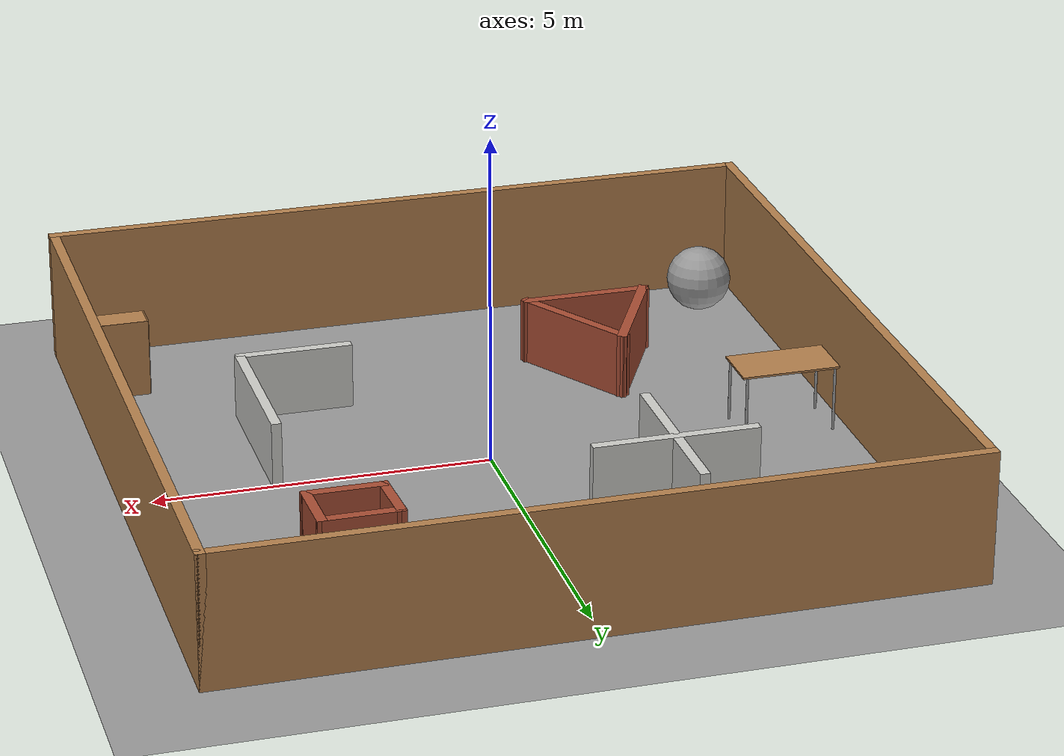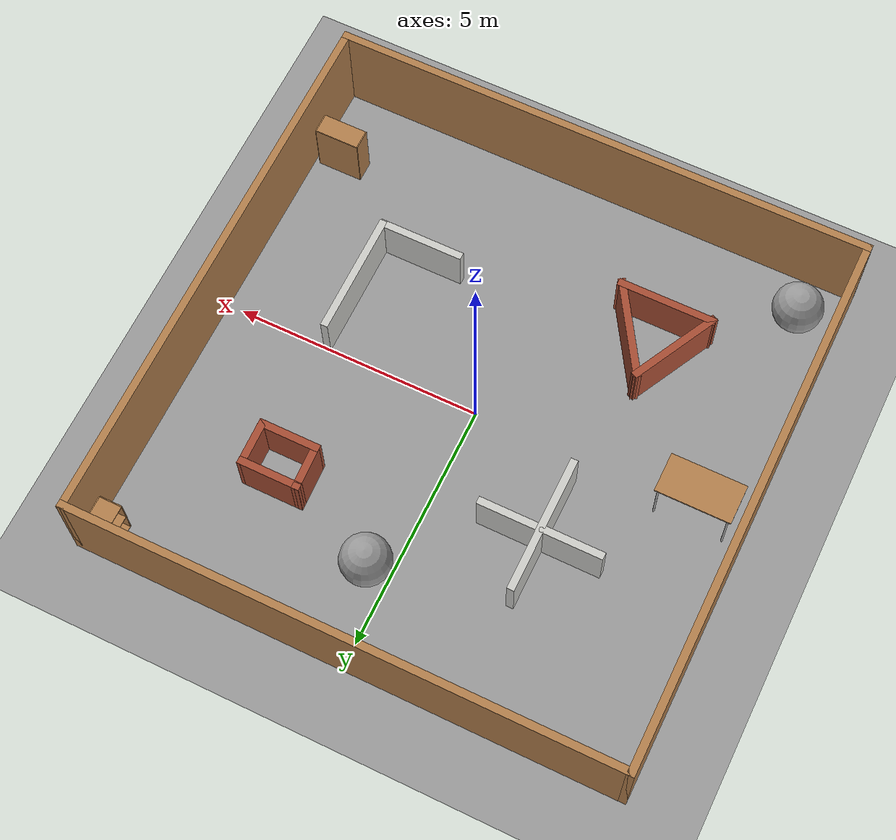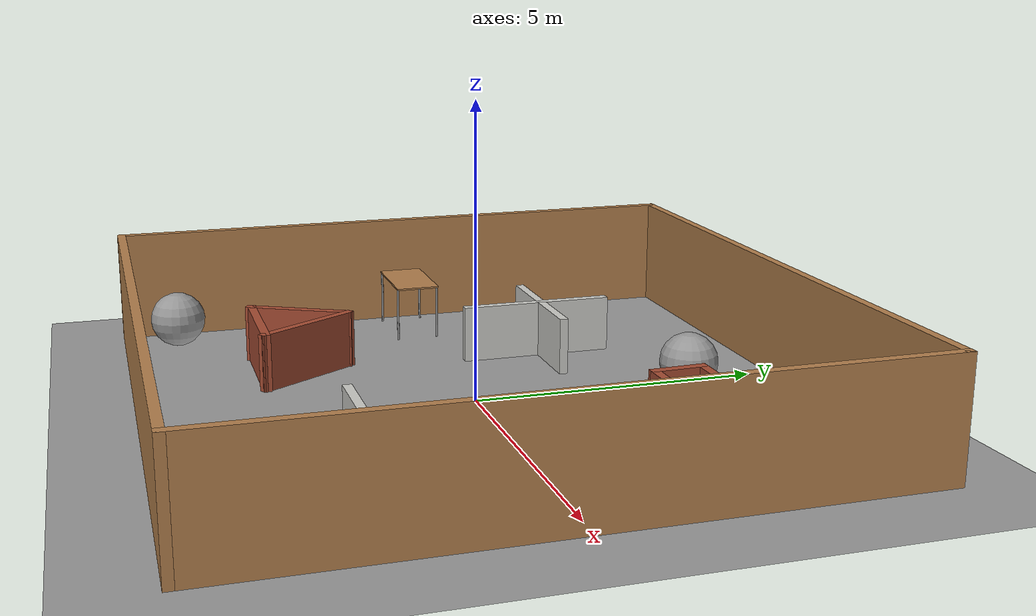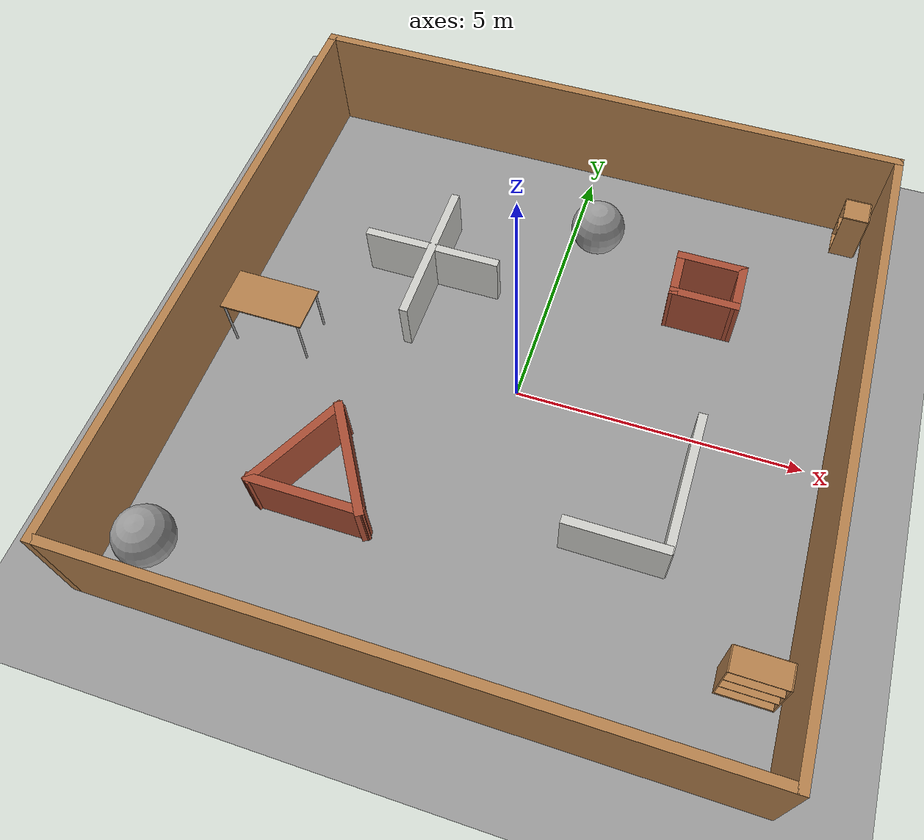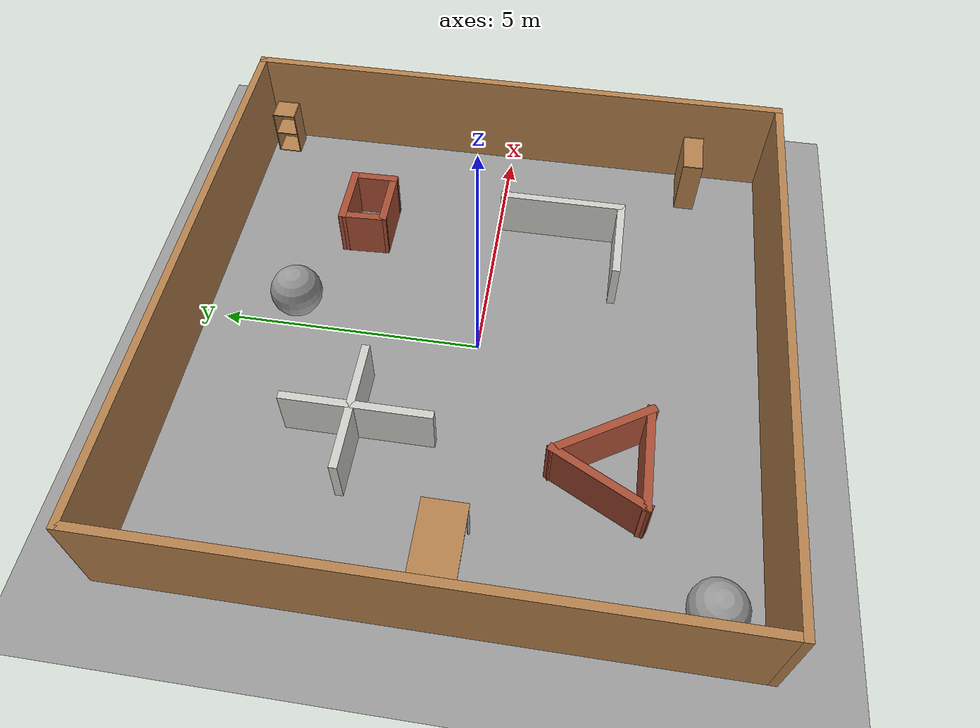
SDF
<sdf version="1.6">
 <world name="default">
  <light name="sun" type="directional">
   <pose>0 0 10 0 -0 0</pose>
   <diffuse>0.8 0.8 0.8 1</diffuse>
   <specular>0.2 0.2 0.2 1</specular>
   <attenuation>
    <range>1000</range>
    <constant>0.9</constant>
    <linear>0.01</linear>
    <quadratic>0.001</quadratic>
   </attenuation>
   <direction>0.5 0.1 -0.9</direction>
  </light>
  <scene><ambient>0.4 0.4 0.4 1</ambient><background>0.7 0.7 0.7 1</background><shadows>1</shadows></scene>
  <physics name="default_physics" default="0" type="ode">
   <max_step_size>0.01</max_step_size>
   <real_time_factor>1</real_time_factor>
   <real_time_update_rate>100</real_time_update_rate>
  </physics>
  <model name="ground_plane_0">
   <static>1</static>
   <link name="link">
    <collision name="collision">
     <geometry><plane><normal>0 0 1</normal><size>100 100</size></plane></geometry>
     <surface><friction><ode><mu>100</mu><mu2>50</mu2></ode></friction></surface>
    </collision>
    <visual name="visual">
     <cast_shadows>0</cast_shadows>
     <geometry><plane><normal>0 0 1</normal><size>100 100</size></plane></geometry>
     <material>
      <script><uri>file://media/materials/scripts/gazebo.material</uri><name>Gazebo/Grey</name></script>
     </material>
    </visual>
    <velocity_decay><linear>0</linear><angular>0</angular></velocity_decay>
   </link>
   <pose>0.497681 0 0 0 -0 0</pose>
  </model>
  <gravity>0 0 -9.8</gravity>
  <magnetic_field>6e-06 2.3e-05 -4.2e-05</magnetic_field>
  <atmosphere type="adiabatic"/>
  <spherical_coordinates>
   <surface_model>EARTH_WGS84</surface_model>
   <latitude_deg>0</latitude_deg>
   <longitude_deg>0</longitude_deg>
   <elevation>0</elevation>
   <heading_deg>0</heading_deg>
  </spherical_coordinates>
  <model name="Untitled">
   <pose>-0.03799 0.0344 0 0 -0 0</pose>
   <link name="Wall_11">
    <collision name="Wall_11_Collision">
     <geometry><box><size>2.5 0.15 1</size></box></geometry>
     <pose>0 0 0.5 0 -0 0</pose>
    </collision>
    <visual name="Wall_11_Visual">
     <pose>0 0 0.5 0 -0 0</pose>
     <geometry><box><size>2.5 0.15 1</size></box></geometry>
     <material>
      <script><uri>file://media/materials/scripts/gazebo.material</uri><name>Gazebo/CeilingTiled</name></script>
      <ambient>1 1 1 1</ambient>
     </material>
     <meta><layer>0</layer></meta>
    </visual>
    <pose>-2.152 1.857 0 0 -0 0</pose>
   </link>
   <link name="Wall_13">
    <collision name="Wall_13_Collision">
     <geometry><box><size>2.75 0.15 1</size></box></geometry>
     <pose>0 0 0.5 0 -0 0</pose>
    </collision>
    <visual name="Wall_13_Visual">
     <pose>0 0 0.5 0 -0 0</pose>
     <geometry><box><size>2.75 0.15 1</size></box></geometry>
     <material>
      <script><uri>file://media/materials/scripts/gazebo.material</uri><name>Gazebo/CeilingTiled</name></script>
      <ambient>1 1 1 1</ambient>
     </material>
     <meta><layer>0</layer></meta>
    </visual>
    <pose>-2.155 1.764 0 0 0 -1.5708</pose>
   </link>
   <link name="Wall_15">
    <collision name="Wall_15_Collision">
     <geometry><box><size>1.2678 0.15 1</size></box></geometry>
     <pose>0 0 0.5 0 -0 0</pose>
    </collision>
    <visual name="Wall_15_Visual">
     <pose>0 0 0.5 0 -0 0</pose>
     <geometry><box><size>1.2678 0.15 1</size></box></geometry>
     <material>
      <script><uri>file://media/materials/scripts/gazebo.material</uri><name>Gazebo/Bricks</name></script>
      <ambient>1 1 1 1</ambient>
     </material>
     <meta><layer>0</layer></meta>
    </visual>
    <pose>2.724 3.029 0 0 -0 0</pose>
   </link>
   <link name="Wall_16">
    <collision name="Wall_16_Collision">
     <geometry><box><size>0.965005 0.15 1</size></box></geometry>
     <pose>0 0 0.5 0 -0 0</pose>
    </collision>
    <visual name="Wall_16_Visual">
     <pose>0 0 0.5 0 -0 0</pose>
     <geometry><box><size>0.965005 0.15 1</size></box></geometry>
     <material>
      <script><uri>file://media/materials/scripts/gazebo.material</uri><name>Gazebo/Bricks</name></script>
      <ambient>1 1 1 1</ambient>
     </material>
     <meta><layer>0</layer></meta>
    </visual>
    <pose>3.2915 2.6215 0 0 0 -1.54994</pose>
   </link>
   <link name="Wall_17">
    <collision name="Wall_17_Collision">
     <geometry><box><size>1.25 0.15 1</size></box></geometry>
     <pose>0 0 0.5 0 -0 0</pose>
    </collision>
    <visual name="Wall_17_Visual">
     <pose>0 0 0.5 0 -0 0</pose>
     <geometry><box><size>1.25 0.15 1</size></box></geometry>
     <material>
      <script><uri>file://media/materials/scripts/gazebo.material</uri><name>Gazebo/Bricks</name></script>
      <ambient>1 1 1 1</ambient>
     </material>
     <meta><layer>0</layer></meta>
    </visual>
    <pose>2.75 2.214 0 0 -0 3.14159</pose>
   </link>
   <link name="Wall_18">
    <collision name="Wall_18_Collision">
     <geometry><box><size>0.965005 0.15 1</size></box></geometry>
     <pose>0 0 0.5 0 -0 0</pose>
    </collision>
    <visual name="Wall_18_Visual">
     <pose>0 0 0.5 0 -0 0</pose>
     <geometry><box><size>0.965005 0.15 1</size></box></geometry>
     <material>
      <script><uri>file://media/materials/scripts/gazebo.material</uri><name>Gazebo/Bricks</name></script>
      <ambient>1 1 1 1</ambient>
     </material>
     <meta><layer>0</layer></meta>
    </visual>
    <pose>2.1825 2.6215 0 0 -0 1.61372</pose>
   </link>
   <link name="Wall_24">
    <collision name="Wall_24_Collision">
     <geometry><box><size>1.97704 0.15 1</size></box></geometry>
     <pose>0 0 0.5 0 -0 0</pose>
    </collision>
    <visual name="Wall_24_Visual">
     <pose>0 0 0.5 0 -0 0</pose>
     <geometry><box><size>1.97704 0.15 1</size></box></geometry>
     <material>
      <script><uri>file://media/materials/scripts/gazebo.material</uri><name>Gazebo/Bricks</name></script>
      <ambient>1 1 1 1</ambient>
     </material>
     <meta><layer>0</layer></meta>
    </visual>
    <pose>-2.89576 -2.49088 0 0 -0 1.09459</pose>
   </link>
   <link name="Wall_25">
    <collision name="Wall_25_Collision">
     <geometry><box><size>2.06356 0.15 1</size></box></geometry>
     <pose>0 0 0.5 0 -0 0</pose>
    </collision>
    <visual name="Wall_25_Visual">
     <pose>0 0 0.5 0 -0 0</pose>
     <geometry><box><size>2.06356 0.15 1</size></box></geometry>
     <material>
      <script><uri>file://media/materials/scripts/gazebo.material</uri><name>Gazebo/Bricks</name></script>
      <ambient>1 1 1 1</ambient>
     </material>
     <meta><layer>0</layer></meta>
    </visual>
    <pose>-1.97077 -2.49088 0 0 0 -1.01325</pose>
   </link>
   <link name="Wall_26">
    <collision name="Wall_26_Collision">
     <geometry><box><size>2 0.15 1</size></box></geometry>
     <pose>0 0 0.5 0 -0 0</pose>
    </collision>
    <visual name="Wall_26_Visual">
     <pose>0 0 0.5 0 -0 0</pose>
     <geometry><box><size>2 0.15 1</size></box></geometry>
     <material>
      <script><uri>file://media/materials/scripts/gazebo.material</uri><name>Gazebo/Bricks</name></script>
      <ambient>1 1 1 1</ambient>
     </material>
     <meta><layer>0</layer></meta>
    </visual>
    <pose>-2.38953 -3.28527 0 0 -0 3.14159</pose>
   </link>
   <link name="Wall_28">
    <collision name="Wall_28_Collision">
     <geometry><box><size>1.75 0.15 1</size></box></geometry>
     <pose>0 0 0.5 0 -0 0</pose>
    </collision>
    <visual name="Wall_28_Visual">
     <pose>0 0 0.5 0 -0 0</pose>
     <geometry><box><size>1.75 0.15 1</size></box></geometry>
     <material>
      <script><uri>file://media/materials/scripts/gazebo.material</uri><name>Gazebo/CeilingTiled</name></script>
      <ambient>1 1 1 1</ambient>
     </material>
     <meta><layer>0</layer></meta>
    </visual>
    <pose>2.38813 -2.48047 0 0 -0 0</pose>
   </link>
   <link name="Wall_29">
    <collision name="Wall_29_Collision">
     <geometry><box><size>2.5 0.15 1</size></box></geometry>
     <pose>0 0 0.5 0 -0 0</pose>
    </collision>
    <visual name="Wall_29_Visual">
     <pose>0 0 0.5 0 -0 0</pose>
     <geometry><box><size>2.5 0.15 1</size></box></geometry>
     <material>
      <script><uri>file://media/materials/scripts/gazebo.material</uri><name>Gazebo/CeilingTiled</name></script>
      <ambient>1 1 1 1</ambient>
     </material>
     <meta><layer>0</layer></meta>
    </visual>
    <pose>3.20562 -1.28798 0 0 -0 1.5708</pose>
   </link>
   <link name="Wall_6">
    <collision name="Wall_6_Collision">
     <geometry><box><size>11 0.15 2</size></box></geometry>
     <pose>0 0 1 0 -0 0</pose>
    </collision>
    <visual name="Wall_6_Visual">
     <pose>0 0 1 0 -0 0</pose>
     <geometry><box><size>11 0.15 2</size></box></geometry>
     <material>
      <script><uri>file://media/materials/scripts/gazebo.material</uri><name>Gazebo/Wood</name></script>
      <ambient>1 1 1 1</ambient>
     </material>
     <meta><layer>0</layer></meta>
    </visual>
    <pose>0 5.425 0 0 -0 0</pose>
   </link>
   <link name="Wall_7">
    <collision name="Wall_7_Collision">
     <geometry><box><size>11 0.15 2</size></box></geometry>
     <pose>0 0 1 0 -0 0</pose>
    </collision>
    <visual name="Wall_7_Visual">
     <pose>0 0 1 0 -0 0</pose>
     <geometry><box><size>11 0.15 2</size></box></geometry>
     <material>
      <script><uri>file://media/materials/scripts/gazebo.material</uri><name>Gazebo/Wood</name></script>
      <ambient>1 1 1 1</ambient>
     </material>
     <meta><layer>0</layer></meta>
    </visual>
    <pose>5.425 0 0 0 0 -1.5708</pose>
   </link>
   <link name="Wall_8">
    <collision name="Wall_8_Collision">
     <geometry><box><size>11 0.15 2</size></box></geometry>
     <pose>0 0 1 0 -0 0</pose>
    </collision>
    <visual name="Wall_8_Visual">
     <pose>0 0 1 0 -0 0</pose>
     <geometry><box><size>11 0.15 2</size></box></geometry>
     <material>
      <script><uri>file://media/materials/scripts/gazebo.material</uri><name>Gazebo/Wood</name></script>
      <ambient>1 1 1 1</ambient>
     </material>
     <meta><layer>0</layer></meta>
    </visual>
    <pose>0 -5.425 0 0 -0 3.14159</pose>
   </link>
   <link name="Wall_9">
    <collision name="Wall_9_Collision">
     <geometry><box><size>11 0.15 2</size></box></geometry>
     <pose>0 0 1 0 -0 0</pose>
    </collision>
    <visual name="Wall_9_Visual">
     <pose>0 0 1 0 -0 0</pose>
     <geometry><box><size>11 0.15 2</size></box></geometry>
     <material>
      <script><uri>file://media/materials/scripts/gazebo.material</uri><name>Gazebo/Wood</name></script>
      <ambient>1 1 1 1</ambient>
     </material>
     <meta><layer>0</layer></meta>
    </visual>
    <pose>-5.425 0 0 0 -0 1.5708</pose>
   </link>
   <static>1</static>
  </model>
  <model name="cabinet">
   <static>1</static>
   <link name="cabinet_bottom_plate">
    <inertial>
     <pose>0 0 -1 0 -0 0</pose>
     <inertia><ixx>2.05</ixx><ixy>0</ixy><ixz>0</ixz><iyy>2.05</iyy><iyz>0</iyz><izz>2.05</izz></inertia>
     <mass>25</mass>
    </inertial>
    <collision name="cabinet_bottom_plate_geom">
     <pose>0 0 0.01 0 -0 0</pose>
     <geometry><box><size>0.45 0.45 0.02</size></box></geometry>
    </collision>
    <visual name="cabinet_bottom_plate_geom_visual">
     <pose>0 0 0.01 0 -0 0</pose>
     <geometry><box><size>0.45 0.45 0.02</size></box></geometry>
     <material>
      <script><uri>file://media/materials/scripts/gazebo.material</uri><name>Gazebo/Wood</name></script>
     </material>
    </visual>
    <collision name="cabinet_bottom_plate_geom_cabinet_back_plate">
     <pose>0.235 0 0.51 0 -0 0</pose>
     <geometry><box><size>0.02 0.45 1.02</size></box></geometry>
    </collision>
    <visual name="cabinet_bottom_plate_geom_cabinet_back_plate_visual">
     <pose>0.235 0 0.51 0 -0 0</pose>
     <geometry><box><size>0.02 0.45 1.02</size></box></geometry>
     <material>
      <script><uri>file://media/materials/scripts/gazebo.material</uri><name>Gazebo/Wood</name></script>
     </material>
    </visual>
    <collision name="cabinet_bottom_plate_geom_cabinet_left_plate">
     <pose>0 0.235 0.51 0 -0 0</pose>
     <geometry><box><size>0.45 0.02 1.02</size></box></geometry>
    </collision>
    <visual name="cabinet_bottom_plate_geom_cabinet_left_plate_visual">
     <pose>0 0.235 0.51 0 -0 0</pose>
     <geometry><box><size>0.45 0.02 1.02</size></box></geometry>
     <material>
      <script><uri>file://media/materials/scripts/gazebo.material</uri><name>Gazebo/Wood</name></script>
     </material>
    </visual>
    <collision name="cabinet_bottom_plate_geom_cabinet_middle_plate">
     <pose>0 0 0.51 0 -0 0</pose>
     <geometry><box><size>0.45 0.45 0.02</size></box></geometry>
    </collision>
    <visual name="cabinet_bottom_plate_geom_cabinet_middle_plate_visual">
     <pose>0 0 0.51 0 -0 0</pose>
     <geometry><box><size>0.45 0.45 0.02</size></box></geometry>
     <material>
      <script><uri>file://media/materials/scripts/gazebo.material</uri><name>Gazebo/Wood</name></script>
     </material>
    </visual>
    <collision name="cabinet_bottom_plate_geom_cabinet_right_plate">
     <pose>0 -0.235 0.51 0 -0 0</pose>
     <geometry><box><size>0.45 0.02 1.02</size></box></geometry>
    </collision>
    <visual name="cabinet_bottom_plate_geom_cabinet_right_plate_visual">
     <pose>0 -0.235 0.51 0 -0 0</pose>
     <geometry><box><size>0.45 0.02 1.02</size></box></geometry>
     <material>
      <script><uri>file://media/materials/scripts/gazebo.material</uri><name>Gazebo/Wood</name></script>
     </material>
    </visual>
    <collision name="cabinet_bottom_plate_geom_cabinet_top_plate">
     <pose>0 0 1.01 0 -0 0</pose>
     <geometry><box><size>0.45 0.45 0.02</size></box></geometry>
    </collision>
    <visual name="cabinet_bottom_plate_geom_cabinet_top_plate_visual">
     <pose>0 0 1.01 0 -0 0</pose>
     <geometry><box><size>0.45 0.45 0.02</size></box></geometry>
     <material>
      <script><uri>file://media/materials/scripts/gazebo.material</uri><name>Gazebo/Wood</name></script>
     </material>
    </visual>
   </link>
   <pose>4.98173 5.02016 0 0 -0 0</pose>
  </model>
  <model name="bookshelf">
   <static>1</static>
   <link name="link">
    <inertial><mass>1</mass></inertial>
    <collision name="back">
     <pose>0 0.005 0.6 0 -0 0</pose>
     <geometry><box><size>0.9 0.01 1.2</size></box></geometry>
    </collision>
    <visual name="visual1">
     <pose>0 0.005 0.6 0 -0 0</pose>
     <geometry><box><size>0.9 0.01 1.2</size></box></geometry>
     <material>
      <script><uri>file://media/materials/scripts/gazebo.material</uri><name>Gazebo/Wood</name></script>
     </material>
    </visual>
    <collision name="left_side">
     <pose>0.45 -0.195 0.6 0 -0 0</pose>
     <geometry><box><size>0.02 0.4 1.2</size></box></geometry>
    </collision>
    <visual name="visual2">
     <pose>0.45 -0.195 0.6 0 -0 0</pose>
     <geometry><box><size>0.02 0.4 1.2</size></box></geometry>
     <material>
      <script><uri>file://media/materials/scripts/gazebo.material</uri><name>Gazebo/Wood</name></script>
     </material>
    </visual>
    <collision name="right_side">
     <pose>-0.45 -0.195 0.6 0 -0 0</pose>
     <geometry><box><size>0.02 0.4 1.2</size></box></geometry>
    </collision>
    <visual name="visual3">
     <pose>-0.45 -0.195 0.6 0 -0 0</pose>
     <geometry><box><size>0.02 0.4 1.2</size></box></geometry>
     <material>
      <script><uri>file://media/materials/scripts/gazebo.material</uri><name>Gazebo/Wood</name></script>
     </material>
    </visual>
    <collision name="bottom">
     <pose>0 -0.195 0.03 0 -0 0</pose>
     <geometry><box><size>0.88 0.4 0.06</size></box></geometry>
    </collision>
    <visual name="visual4">
     <pose>0 -0.195 0.03 0 -0 0</pose>
     <geometry><box><size>0.88 0.4 0.06</size></box></geometry>
     <material>
      <script><uri>file://media/materials/scripts/gazebo.material</uri><name>Gazebo/Wood</name></script>
     </material>
    </visual>
    <collision name="top">
     <pose>0 -0.195 1.19 0 -0 0</pose>
     <geometry><box><size>0.88 0.4 0.02</size></box></geometry>
    </collision>
    <visual name="visual5">
     <pose>0 -0.195 1.19 0 -0 0</pose>
     <geometry><box><size>0.88 0.4 0.02</size></box></geometry>
     <material>
      <script><uri>file://media/materials/scripts/gazebo.material</uri><name>Gazebo/Wood</name></script>
     </material>
    </visual>
    <collision name="low_shelf">
     <pose>0 -0.195 0.43 0 -0 0</pose>
     <geometry><box><size>0.88 0.4 0.02</size></box></geometry>
    </collision>
    <visual name="visual6">
     <pose>0 -0.195 0.43 0 -0 0</pose>
     <geometry><box><size>0.88 0.4 0.02</size></box></geometry>
     <material>
      <script><uri>file://media/materials/scripts/gazebo.material</uri><name>Gazebo/Wood</name></script>
     </material>
    </visual>
    <collision name="high_shelf">
     <pose>0 -0.195 0.8 0 -0 0</pose>
     <geometry><box><size>0.88 0.4 0.02</size></box></geometry>
    </collision>
    <visual name="visual7">
     <pose>0 -0.195 0.8 0 -0 0</pose>
     <geometry><box><size>0.88 0.4 0.02</size></box></geometry>
     <material>
      <script><uri>file://media/materials/scripts/gazebo.material</uri><name>Gazebo/Wood</name></script>
     </material>
    </visual>
   </link>
   <pose>4.76137 -3.62422 0 0 -0 0</pose>
  </model>
  <model name="table">
   <static>1</static>
   <link name="link">
    <collision name="surface">
     <pose>0 0 1 0 -0 0</pose>
     <geometry><box><size>1.5 0.8 0.03</size></box></geometry>
     <surface><friction><ode><mu>0.6</mu><mu2>0.6</mu2></ode></friction></surface>
    </collision>
    <visual name="visual1">
     <pose>0 0 1 0 -0 0</pose>
     <geometry><box><size>1.5 0.8 0.03</size></box></geometry>
     <material>
      <script><uri>file://media/materials/scripts/gazebo.material</uri><name>Gazebo/Wood</name></script>
     </material>
    </visual>
    <collision name="front_left_leg">
     <pose>0.68 0.38 0.5 0 -0 0</pose>
     <geometry><cylinder><radius>0.02</radius><length>1</length></cylinder></geometry>
    </collision>
    <visual name="front_left_leg">
     <pose>0.68 0.38 0.5 0 -0 0</pose>
     <geometry><cylinder><radius>0.02</radius><length>1</length></cylinder></geometry>
     <material>
      <script><uri>file://media/materials/scripts/gazebo.material</uri><name>Gazebo/Grey</name></script>
     </material>
    </visual>
    <collision name="front_right_leg">
     <pose>0.68 -0.38 0.5 0 -0 0</pose>
     <geometry><cylinder><radius>0.02</radius><length>1</length></cylinder></geometry>
    </collision>
    <visual name="front_right_leg">
     <pose>0.68 -0.38 0.5 0 -0 0</pose>
     <geometry><cylinder><radius>0.02</radius><length>1</length></cylinder></geometry>
     <material>
      <script><uri>file://media/materials/scripts/gazebo.material</uri><name>Gazebo/Grey</name></script>
     </material>
    </visual>
    <collision name="back_right_leg">
     <pose>-0.68 -0.38 0.5 0 -0 0</pose>
     <geometry><cylinder><radius>0.02</radius><length>1</length></cylinder></geometry>
    </collision>
    <visual name="back_right_leg">
     <pose>-0.68 -0.38 0.5 0 -0 0</pose>
     <geometry><cylinder><radius>0.02</radius><length>1</length></cylinder></geometry>
     <material>
      <script><uri>file://media/materials/scripts/gazebo.material</uri><name>Gazebo/Grey</name></script>
     </material>
    </visual>
    <collision name="back_left_leg">
     <pose>-0.68 0.38 0.5 0 -0 0</pose>
     <geometry><cylinder><radius>0.02</radius><length>1</length></cylinder></geometry>
    </collision>
    <visual name="back_left_leg">
     <pose>-0.68 0.38 0.5 0 -0 0</pose>
     <geometry><cylinder><radius>0.02</radius><length>1</length></cylinder></geometry>
     <material>
      <script><uri>file://media/materials/scripts/gazebo.material</uri><name>Gazebo/Grey</name></script>
     </material>
    </visual>
   </link>
   <pose>-4.48069 -0.04466 0 0 -0 0</pose>
  </model>
  <model name="polaris_ranger_ev1">
   <link name="link_0">
    <pose>0.295256 0.164823 0.499961 -0.000144 -0.00027 -0.00031</pose>
    <inertial>
     <mass>1</mass>
     <inertia><ixx>0.1</ixx><ixy>0</ixy><ixz>0</ixz><iyy>0.1</iyy><iyz>0</iyz><izz>0.1</izz></inertia>
    </inertial>
    <visual name="visual">
     <geometry><sphere><radius>0.5</radius></sphere></geometry>
     <material>
      <lighting>1</lighting>
      <script><uri>file://media/materials/scripts/gazebo.material</uri><name>Gazebo/Grey</name></script>
      <shader type="pixel"/>
      <ambient>0.3 0.3 0.3 1</ambient>
      <diffuse>0.7 0.7 0.7 1</diffuse>
      <specular>0.01 0.01 0.01 1</specular>
      <emissive>0 0 0 1</emissive>
     </material>
    </visual>
    <collision name="collision">
     <geometry><sphere><radius>0.5</radius></sphere></geometry>
     <surface>
      <friction>
       <ode><mu>1</mu><mu2>1</mu2><fdir1>0 0 0</fdir1><slip1>0</slip1><slip2>0</slip2></ode>
       <torsional>
        <coefficient>1</coefficient>
        <patch_radius>0</patch_radius>
        <surface_radius>0</surface_radius>
        <use_patch_radius>1</use_patch_radius>
        <ode><slip>0</slip></ode>
       </torsional>
      </friction>
      <bounce><restitution_coefficient>0</restitution_coefficient><threshold>1e+06</threshold></bounce>
      <contact>
       <collide_without_contact>0</collide_without_contact>
       <collide_without_contact_bitmask>1</collide_without_contact_bitmask>
       <collide_bitmask>1</collide_bitmask>
       <ode>
        <soft_cfm>0</soft_cfm>
        <soft_erp>0.2</soft_erp>
        <kp>1e+13</kp>
        <kd>1</kd>
        <max_vel>0.01</max_vel>
        <min_depth>0</min_depth>
       </ode>
       <bullet>
        <split_impulse>1</split_impulse>
        <split_impulse_penetration_threshold>-0.01</split_impulse_penetration_threshold>
        <soft_cfm>0</soft_cfm>
        <soft_erp>0.2</soft_erp>
        <kp>1e+13</kp>
        <kd>1</kd>
       </bullet>
      </contact>
     </surface>
    </collision>
   </link>
   <link name="link_1">
    <pose>-4.84313 -7.93921 0.499747 -0.000144 -0.00027 -0.000311</pose>
    <inertial>
     <mass>1</mass>
     <inertia><ixx>0.1</ixx><ixy>0</ixy><ixz>0</ixz><iyy>0.1</iyy><iyz>0</iyz><izz>0.1</izz></inertia>
    </inertial>
    <visual name="visual">
     <geometry><sphere><radius>0.5</radius></sphere></geometry>
     <material>
      <lighting>1</lighting>
      <script><uri>file://media/materials/scripts/gazebo.material</uri><name>Gazebo/Grey</name></script>
      <shader type="pixel"/>
      <ambient>0.3 0.3 0.3 1</ambient>
      <diffuse>0.7 0.7 0.7 1</diffuse>
      <specular>0.01 0.01 0.01 1</specular>
      <emissive>0 0 0 1</emissive>
     </material>
    </visual>
    <collision name="collision">
     <geometry><sphere><radius>0.5</radius></sphere></geometry>
     <surface>
      <friction>
       <ode><mu>1</mu><mu2>1</mu2><fdir1>0 0 0</fdir1><slip1>0</slip1><slip2>0</slip2></ode>
       <torsional>
        <coefficient>1</coefficient>
        <patch_radius>0</patch_radius>
        <surface_radius>0</surface_radius>
        <use_patch_radius>1</use_patch_radius>
        <ode><slip>0</slip></ode>
       </torsional>
      </friction>
      <bounce><restitution_coefficient>0</restitution_coefficient><threshold>1e+06</threshold></bounce>
      <contact>
       <collide_without_contact>0</collide_without_contact>
       <collide_without_contact_bitmask>1</collide_without_contact_bitmask>
       <collide_bitmask>1</collide_bitmask>
       <ode>
        <soft_cfm>0</soft_cfm>
        <soft_erp>0.2</soft_erp>
        <kp>1e+13</kp>
        <kd>1</kd>
        <max_vel>0.01</max_vel>
        <min_depth>0</min_depth>
       </ode>
       <bullet>
        <split_impulse>1</split_impulse>
        <split_impulse_penetration_threshold>-0.01</split_impulse_penetration_threshold>
        <soft_cfm>0</soft_cfm>
        <soft_erp>0.2</soft_erp>
        <kp>1e+13</kp>
        <kd>1</kd>
       </bullet>
      </contact>
     </surface>
    </collision>
   </link>
   <static>0</static>
   <pose>0.166444 3.46652 9.4e-05 0.000144 0.00027 0.000311</pose>
  </model>
 </world>
</sdf>
